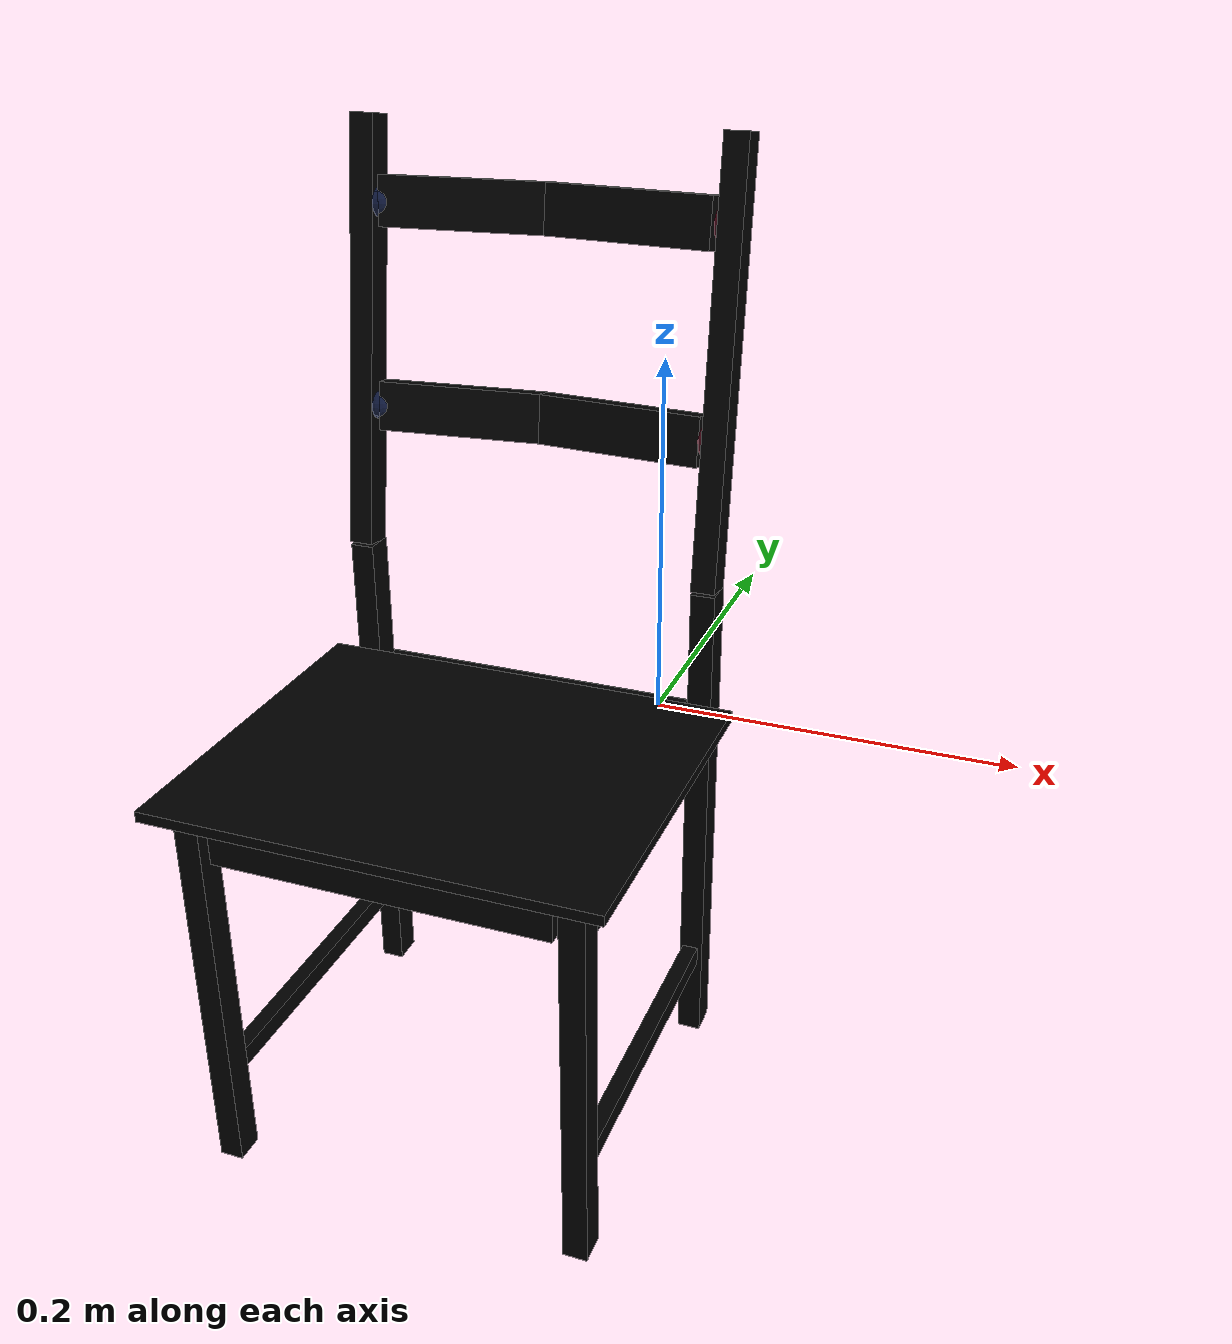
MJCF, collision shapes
<mujoco model="chair_ivar_0668">
    <custom>
        <numeric data="0.371978 0.069044 0.007593 0.500517 -0.499483 0.500514 0.499485" name="0_part0_initpos"/>
        <numeric data="0.024402 -0.027272 0.018791 1.2e-05 -0.999999 0.001077 -0.0" name="4_part4_initpos"/>
        <numeric data="0.017933 0.225411 0.014621 0.999111 0.002904 -0.000122 -0.042059" name="3_part3_initpos"/>
        <numeric data="0.021304 0.340442 0.015788 0.997245 0.069882 0.001738 0.024808" name="2_part2_initpos"/>
        <numeric data="-0.327291 0.05709 0.007492 0.500002 -0.499999 -0.499999 -0.500001" name="1_part1_initpos"/>
    </custom>
    <asset>
        <mesh file="chair_ivar_0668/0.stl" name="part0" scale="0.00050688 0.00050688 0.00050688"/>
        <mesh file="chair_ivar_0668/4.stl" name="part4" scale="0.00050688 0.00050688 0.00050688"/>
        <mesh file="chair_ivar_0668/3.stl" name="part3" scale="0.00050688 0.00050688 0.00050688"/>
        <mesh file="chair_ivar_0668/2.stl" name="part2" scale="0.00050688 0.00050688 0.00050688"/>
        <mesh file="chair_ivar_0668/1.stl" name="part1" scale="0.00050688 0.00050688 0.00050688"/>
    </asset>
    <equality>
        <weld active="false" body1="0_part0" body2="3_part3" solimp="1 1 0.5" solref="0.01 0.3"/>
        <weld active="false" body1="0_part0" body2="2_part2" solimp="1 1 0.5" solref="0.01 0.3"/>
        <weld active="false" body1="4_part4" body2="1_part1" solimp="1 1 0.5" solref="0.01 0.3"/>
        <weld active="false" body1="3_part3" body2="1_part1" solimp="1 1 0.5" solref="0.01 0.3"/>
        <weld active="false" body1="2_part2" body2="1_part1" solimp="1 1 0.5" solref="0.01 0.3"/>
        <weld active="false" body1="0_part0" body2="4_part4" solimp="1 1 0.5" solref="0.01 0.3"/>
    </equality>
    <worldbody>
        <body name="0_part0" pos="-0.0 0.0 0.0" quat="1 0 0 0">
            <geom conaffinity="0" contype="0" density="0" mesh="part0" name="0_part0_mesh" pos="0.0 0.0 0.0"
                  rgba="0.82 0.71 0.55 1" type="mesh"/>
            <site name="0_part0_horizontal_radius_site" pos="-0.0 0.0 0.0" quat="1 0 0 0" rgba="0 0 0 0" size="0.0088"/>
            <site name="0_part0_top_site" pos="0.0 0.0 0.296793925300224" quat="1 0 0 0" rgba="0 0 0 0" size="0.0088"/>
            <site name="0_part0_bottom_site" pos="0.0 0.0 -0.296793925300224" quat="1 0 0 0" rgba="0 0 0 0"
                  size="0.0088"/>
            <site name="0_part0_corner_site8" pos="-0.009656063999999999 0.137994305619456 0.296793925300224"
                  quat="1 0 0 0" rgba="0 0 0 0" size="0.010137599999999998"/>
            <site name="0_part0_corner_site7" pos="0.009656063999999999 0.137994305619456 0.296793925300224"
                  quat="1 0 0 0" rgba="0 0 0 0" size="0.010137599999999998"/>
            <site name="0_part0_corner_site6" pos="0.009656063999999999 -0.137994305619456 0.296793925300224"
                  quat="1 0 0 0" rgba="0 0 0 0" size="0.010137599999999998"/>
            <site name="0_part0_corner_site5" pos="-0.009656063999999999 -0.137994305619456 0.296793925300224"
                  quat="1 0 0 0" rgba="0 0 0 0" size="0.010137599999999998"/>
            <site name="0_part0_corner_site4" pos="-0.009656063999999999 0.137994305619456 -0.296793925300224"
                  quat="1 0 0 0" rgba="0 0 0 0" size="0.010137599999999998"/>
            <site name="0_part0_corner_site3" pos="0.009656063999999999 0.137994305619456 -0.296793925300224"
                  quat="1 0 0 0" rgba="0 0 0 0" size="0.010137599999999998"/>
            <site name="0_part0_corner_site2" pos="0.009656063999999999 -0.137994305619456 -0.296793925300224"
                  quat="1 0 0 0" rgba="0 0 0 0" size="0.010137599999999998"/>
            <site name="0_part0_corner_site1" pos="-0.009656063999999999 -0.137994305619456 -0.296793925300224"
                  quat="1 0 0 0" rgba="0 0 0 0" size="0.010137599999999998"/>
            <geom density="50" name="noviz_collision_0_part0_0" pos="0.0 0.10897919999999998 0.164736"
                  quat="0.9973708 -0.07246746 0 0" rgba="0 0 0 0"
                  size="0.007603199999999998 0.009630719999999997 0.1317888" solref="0.001 1" type="box"/>
            <geom density="50" name="noviz_collision_0_part0_1" pos="0.0 0.09073152 -0.13128192" quat="1 0 0 0"
                  rgba="0 0 0 0" size="0.007603199999999998 0.009630719999999997 0.164736" solref="0.001 1" type="box"/>
            <geom density="50" name="noviz_collision_0_part0_2" pos="0.0 -0.12824064 -0.17183231999999998"
                  quat="1 0 0 0" rgba="0 0 0 0" size="0.007603199999999998 0.0088704 0.12418559999999997"
                  solref="0.001 1" type="box"/>
            <geom density="50" name="noviz_collision_0_part0_3" pos="0.0 -0.01976832 -0.06234624" quat="1 0 0 0"
                  rgba="0 0 0 0" size="0.006335999999999999 0.09884159999999999 0.0139392" solref="0.001 1" type="box"/>
            <geom density="50" name="noviz_collision_0_part0_4" pos="0.0 -0.01976832 -0.23215104" quat="1 0 0 0"
                  rgba="0 0 0 0" size="0.005068799999999999 0.09884159999999999 0.006335999999999999" solref="0.001 1"
                  type="box"/>
            <site name="lleg-back,0,conn_site2" pos="-0.009732095999999999 0.12722688 0.2445696" quat="1 0 0 0"
                  rgba="0.9019 0.0980 0.2941 0.3" size="0.0088"/>
            <site name="lleg-back,0,conn_site1" pos="-0.009123839999999998 0.10502553599999999 0.12352665599999997"
                  quat="1 0 0 0" rgba="0.9019 0.0980 0.2941 0.3" size="0.0088"/>
            <site name="lleg-seat,0,conn_site1" pos="-0.009630719999999997 0.08921087999999998 -0.05981183999999999"
                  quat="1 0 0 0" rgba="0.2352 0.7058 0.2941 0.3" size="0.0088"/>
        </body>
        <body name="4_part4" pos="-0.115872764806656 -0.026949470625791998 -0.05861101639219199" quat="1 0 0 0">
            <geom conaffinity="0" contype="0" density="0" mesh="part4" name="4_part4_mesh" pos="0.0 0.0 0.0"
                  rgba="0.82 0.71 0.55 1" type="mesh"/>
            <site name="4_part4_horizontal_radius_site" pos="0.0 0.0 0.0" quat="1 0 0 0" rgba="0 0 0 0" size="0.0088"/>
            <site name="4_part4_top_site" pos="0.0 0.0 0.019312131091968" quat="1 0 0 0" rgba="0 0 0 0" size="0.0088"/>
            <site name="4_part4_bottom_site" pos="0.0 0.0 -0.019312131091968" quat="1 0 0 0" rgba="0 0 0 0"
                  size="0.0088"/>
            <site name="4_part4_corner_site8" pos="-0.13840358699059196 0.123919537522176 0.019312131091968"
                  quat="1 0 0 0" rgba="0 0 0 0" size="0.010137599999999998"/>
            <site name="4_part4_corner_site7" pos="0.13840358699059196 0.123919537522176 0.019312131091968"
                  quat="1 0 0 0" rgba="0 0 0 0" size="0.010137599999999998"/>
            <site name="4_part4_corner_site6" pos="0.13840358699059196 -0.123919537522176 0.019312131091968"
                  quat="1 0 0 0" rgba="0 0 0 0" size="0.010137599999999998"/>
            <site name="4_part4_corner_site5" pos="-0.13840358699059196 -0.123919537522176 0.019312131091968"
                  quat="1 0 0 0" rgba="0 0 0 0" size="0.010137599999999998"/>
            <site name="4_part4_corner_site4" pos="-0.13840358699059196 0.123919537522176 -0.019312131091968"
                  quat="1 0 0 0" rgba="0 0 0 0" size="0.010137599999999998"/>
            <site name="4_part4_corner_site3" pos="0.13840358699059196 0.123919537522176 -0.019312131091968"
                  quat="1 0 0 0" rgba="0 0 0 0" size="0.010137599999999998"/>
            <site name="4_part4_corner_site2" pos="0.13840358699059196 -0.123919537522176 -0.019312131091968"
                  quat="1 0 0 0" rgba="0 0 0 0" size="0.010137599999999998"/>
            <site name="4_part4_corner_site1" pos="-0.13840358699059196 -0.123919537522176 -0.019312131091968"
                  quat="1 0 0 0" rgba="0 0 0 0" size="0.010137599999999998"/>
            <geom density="50" name="noviz_collision_4_part4_0" pos="0.0 -0.008025248563199998 0.015526215936"
                  quat="1 0 0 0" rgba="0 0 0 0" size="0.138403584 0.114048 0.00329472" solref="0.001 1" type="box"/>
            <geom density="50" name="noviz_collision_4_part4_1" pos="0.0 -0.100784268288 -0.005255864063999999"
                  quat="1 0 0 0" rgba="0 0 0 0" size="0.10391039999999999 0.006335999999999999 0.011911679999999997"
                  solref="0.001 1" type="box"/>
            <geom density="50" name="noviz_collision_4_part4_2" pos="0.0 0.11768101171199999 -0.003380408064"
                  quat="1 0 0 0" rgba="0 0 0 0" size="0.10391039999999999 0.006335999999999999 0.015206399999999997"
                  solref="0.001 1" type="box"/>
            <geom density="50" name="noviz_collision_4_part4_3" pos="0.0 0.11768101171199999 0.009139527936"
                  quat="1 0 0 0" rgba="0 0 0 0" size="0.10391039999999999 0.005068799999999999 0.00329472"
                  solref="0.001 1" type="box"/>
            <site name="seat-rleg,0,conn_site1" pos="-0.105633792 0.11717544959999998 -0.0022150655999999993"
                  quat="1 0 0 0" rgba="1.0 0.8823 0.0980 0.3" size="0.0088"/>
            <site name="seat-lleg,0,conn_site1" pos="0.10624204799999999 0.11616168959999999 -0.0012013056"
                  quat="1 0 0 0" rgba="0.2352 0.7058 0.2941 0.3" size="0.0088"/>
        </body>
        <body name="3_part3" pos="-0.115872961577472 0.12518058795264 0.244362872590848" quat="1 0 0 0">
            <geom conaffinity="0" contype="0" density="0" mesh="part3" name="3_part3_mesh" pos="0.0 0.0 0.0"
                  rgba="0.82 0.71 0.55 1" type="mesh"/>
            <site name="3_part3_horizontal_radius_site" pos="0.0 -0.0 0.0" quat="1 0 0 0" rgba="0 0 0 0" size="0.0088"/>
            <site name="3_part3_top_site" pos="0.0 0.0 0.016096455581183996" quat="1 0 0 0" rgba="0 0 0 0"
                  size="0.0088"/>
            <site name="3_part3_bottom_site" pos="0.0 0.0 -0.016096455581183996" quat="1 0 0 0" rgba="0 0 0 0"
                  size="0.0088"/>
            <site name="3_part3_corner_site8" pos="-0.11587257771724797 0.011540832754176 0.016096455581183996"
                  quat="1 0 0 0" rgba="0 0 0 0" size="0.010137599999999998"/>
            <site name="3_part3_corner_site7" pos="0.11587257771724797 0.011540832754176 0.016096455581183996"
                  quat="1 0 0 0" rgba="0 0 0 0" size="0.010137599999999998"/>
            <site name="3_part3_corner_site6" pos="0.11587257771724797 -0.011540832754176 0.016096455581183996"
                  quat="1 0 0 0" rgba="0 0 0 0" size="0.010137599999999998"/>
            <site name="3_part3_corner_site5" pos="-0.11587257771724797 -0.011540832754176 0.016096455581183996"
                  quat="1 0 0 0" rgba="0 0 0 0" size="0.010137599999999998"/>
            <site name="3_part3_corner_site4" pos="-0.11587257771724797 0.011540832754176 -0.016096455581183996"
                  quat="1 0 0 0" rgba="0 0 0 0" size="0.010137599999999998"/>
            <site name="3_part3_corner_site3" pos="0.11587257771724797 0.011540832754176 -0.016096455581183996"
                  quat="1 0 0 0" rgba="0 0 0 0" size="0.010137599999999998"/>
            <site name="3_part3_corner_site2" pos="0.11587257771724797 -0.011540832754176 -0.016096455581183996"
                  quat="1 0 0 0" rgba="0 0 0 0" size="0.010137599999999998"/>
            <site name="3_part3_corner_site1" pos="-0.11587257771724797 -0.011540832754176 -0.016096455581183996"
                  quat="1 0 0 0" rgba="0 0 0 0" size="0.010137599999999998"/>
            <geom density="50" name="noviz_collision_3_part3_0"
                  pos="-0.053424949248 1.8769766399999998e-05 0.0014739259391999997"
                  quat="0.9965003 -0.071306 -0.003113293 0.0435083" rgba="0 0 0 0"
                  size="0.05322239999999999 0.006335999999999999 0.015206399999999997" solref="0.001 1" type="box"/>
            <geom density="50" name="noviz_collision_3_part3_1"
                  pos="0.05149921075199999 1.8769766399999998e-05 0.0014739259391999997"
                  quat="0.9965003 -0.07130595 0.003113286 -0.04350817" rgba="0 0 0 0"
                  size="0.05322239999999999 0.006335999999999999 0.015206399999999997" solref="0.001 1" type="box"/>
            <site name="back-lleg,0,conn_site2" pos="0.10614067199999998 0.0020477952 0.0002078208" quat="1 0 0 0"
                  rgba="0.9019 0.0980 0.2941 0.3" size="0.0088"/>
            <site name="back-rleg,0,conn_site1" pos="-0.107255808 -0.005403340799999999 0.0006133247999999999"
                  quat="1 0 0 0" rgba="0.2627 0.3882 0.8470 0.3" size="0.0088"/>
        </body>
        <body name="2_part2" pos="-0.115872961577472 0.10729661295513598 0.12332352378931201" quat="1 0 0 0">
            <geom conaffinity="0" contype="0" density="0" mesh="part2" name="2_part2_mesh" pos="0.0 0.0 0.0"
                  rgba="0.82 0.71 0.55 1" type="mesh"/>
            <site name="2_part2_horizontal_radius_site" pos="0.0 -0.0 0.0" quat="1 0 0 0" rgba="0 0 0 0" size="0.0088"/>
            <site name="2_part2_top_site" pos="0.0 0.0 0.016096455581183996" quat="1 0 0 0" rgba="0 0 0 0"
                  size="0.0088"/>
            <site name="2_part2_bottom_site" pos="0.0 0.0 -0.016096455581183996" quat="1 0 0 0" rgba="0 0 0 0"
                  size="0.0088"/>
            <site name="2_part2_corner_site8" pos="-0.11587257771724797 0.011540832754176 0.016096455581183996"
                  quat="1 0 0 0" rgba="0 0 0 0" size="0.010137599999999998"/>
            <site name="2_part2_corner_site7" pos="0.11587257771724797 0.011540832754176 0.016096455581183996"
                  quat="1 0 0 0" rgba="0 0 0 0" size="0.010137599999999998"/>
            <site name="2_part2_corner_site6" pos="0.11587257771724797 -0.011540832754176 0.016096455581183996"
                  quat="1 0 0 0" rgba="0 0 0 0" size="0.010137599999999998"/>
            <site name="2_part2_corner_site5" pos="-0.11587257771724797 -0.011540832754176 0.016096455581183996"
                  quat="1 0 0 0" rgba="0 0 0 0" size="0.010137599999999998"/>
            <site name="2_part2_corner_site4" pos="-0.11587257771724797 0.011540832754176 -0.016096455581183996"
                  quat="1 0 0 0" rgba="0 0 0 0" size="0.010137599999999998"/>
            <site name="2_part2_corner_site3" pos="0.11587257771724797 0.011540832754176 -0.016096455581183996"
                  quat="1 0 0 0" rgba="0 0 0 0" size="0.010137599999999998"/>
            <site name="2_part2_corner_site2" pos="0.11587257771724797 -0.011540832754176 -0.016096455581183996"
                  quat="1 0 0 0" rgba="0 0 0 0" size="0.010137599999999998"/>
            <site name="2_part2_corner_site1" pos="-0.11587257771724797 -0.011540832754176 -0.016096455581183996"
                  quat="1 0 0 0" rgba="0 0 0 0" size="0.010137599999999998"/>
            <geom density="50" name="noviz_collision_2_part2_0"
                  pos="-0.051904309248 0.00016194815999999996 1.1475763199999998e-05"
                  quat="0.9965003 -0.071306 -0.003113293 0.0435083" rgba="0 0 0 0"
                  size="0.05322239999999999 0.006335999999999999 0.015206399999999997" solref="0.001 1" type="box"/>
            <geom density="50" name="noviz_collision_2_part2_1"
                  pos="0.053019850752 0.00016194815999999996 1.1475763199999998e-05"
                  quat="0.9965003 -0.07130595 0.003113286 -0.04350817" rgba="0 0 0 0"
                  size="0.05322239999999999 0.006335999999999999 0.015206399999999997" solref="0.001 1" type="box"/>
            <site name="back-lleg,0,conn_site1" pos="0.10674892799999999 -0.0022708223999999997 0.000202752"
                  quat="1 0 0 0" rgba="0.9019 0.0980 0.2941 0.3" size="0.0088"/>
            <site name="back-rleg,0,conn_site2" pos="-0.10588723199999998 -0.004855910399999999 -0.00030412799999999997"
                  quat="1 0 0 0" rgba="0.2627 0.3882 0.8470 0.3" size="0.0088"/>
        </body>
        <body name="1_part1" pos="-0.231745536 0.0 0.0" quat="1 0 0 0">
            <geom conaffinity="0" contype="0" density="0" mesh="part1" name="1_part1_mesh" pos="0.0 0.0 0.0"
                  rgba="0.82 0.71 0.55 1" type="mesh"/>
            <site name="1_part1_horizontal_radius_site" pos="0.0 0.0 0.0" quat="1 0 0 0" rgba="0 0 0 0" size="0.0088"/>
            <site name="1_part1_top_site" pos="0.0 0.0 0.296793925300224" quat="1 0 0 0" rgba="0 0 0 0" size="0.0088"/>
            <site name="1_part1_bottom_site" pos="0.0 0.0 -0.296793925300224" quat="1 0 0 0" rgba="0 0 0 0"
                  size="0.0088"/>
            <site name="1_part1_corner_site8" pos="-0.009656063999999999 0.137994305619456 0.296793925300224"
                  quat="1 0 0 0" rgba="0 0 0 0" size="0.010137599999999998"/>
            <site name="1_part1_corner_site7" pos="0.009656063999999999 0.137994305619456 0.296793925300224"
                  quat="1 0 0 0" rgba="0 0 0 0" size="0.010137599999999998"/>
            <site name="1_part1_corner_site6" pos="0.009656063999999999 -0.137994305619456 0.296793925300224"
                  quat="1 0 0 0" rgba="0 0 0 0" size="0.010137599999999998"/>
            <site name="1_part1_corner_site5" pos="-0.009656063999999999 -0.137994305619456 0.296793925300224"
                  quat="1 0 0 0" rgba="0 0 0 0" size="0.010137599999999998"/>
            <site name="1_part1_corner_site4" pos="-0.009656063999999999 0.137994305619456 -0.296793925300224"
                  quat="1 0 0 0" rgba="0 0 0 0" size="0.010137599999999998"/>
            <site name="1_part1_corner_site3" pos="0.009656063999999999 0.137994305619456 -0.296793925300224"
                  quat="1 0 0 0" rgba="0 0 0 0" size="0.010137599999999998"/>
            <site name="1_part1_corner_site2" pos="0.009656063999999999 -0.137994305619456 -0.296793925300224"
                  quat="1 0 0 0" rgba="0 0 0 0" size="0.010137599999999998"/>
            <site name="1_part1_corner_site1" pos="-0.009656063999999999 -0.137994305619456 -0.296793925300224"
                  quat="1 0 0 0" rgba="0 0 0 0" size="0.010137599999999998"/>
            <geom density="50" name="noviz_collision_1_part1_0" pos="0.0001013810688 0.10897919999999998 0.164736"
                  quat="0.9973708 -0.07246746 0 0" rgba="0 0 0 0"
                  size="0.007603199999999998 0.009630719999999997 0.1317888" solref="0.001 1" type="box"/>
            <geom density="50" name="noviz_collision_1_part1_1" pos="0.0001013810688 0.09073152 -0.13128192"
                  quat="1 0 0 0" rgba="0 0 0 0" size="0.007603199999999998 0.009630719999999997 0.164736"
                  solref="0.001 1" type="box"/>
            <geom density="50" name="noviz_collision_1_part1_2" pos="0.0001013810688 -0.12824064 -0.17183231999999998"
                  quat="1 0 0 0" rgba="0 0 0 0" size="0.007603199999999998 0.0088704 0.12418559999999997"
                  solref="0.001 1" type="box"/>
            <geom density="50" name="noviz_collision_1_part1_3" pos="0.0001013810688 -0.01976832 -0.06234624"
                  quat="1 0 0 0" rgba="0 0 0 0" size="0.006335999999999999 0.09884159999999999 0.0139392"
                  solref="0.001 1" type="box"/>
            <geom density="50" name="noviz_collision_1_part1_4" pos="0.0001013810688 -0.01976832 -0.23215104"
                  quat="1 0 0 0" rgba="0 0 0 0" size="0.005068799999999999 0.09884159999999999 0.006335999999999999"
                  solref="0.001 1" type="box"/>
            <site name="rleg-back,0,conn_site2" pos="0.009985535999999998 0.10244044799999999 0.12301977599999998"
                  quat="1 0 0 0" rgba="0.2627 0.3882 0.8470 0.3" size="0.0088"/>
            <site name="rleg-back,0,conn_site1" pos="0.008616959999999998 0.11977574399999998 0.244975104"
                  quat="1 0 0 0" rgba="0.2627 0.3882 0.8470 0.3" size="0.0088"/>
            <site name="rleg-seat,0,conn_site1" pos="0.010238975999999997 0.09022463999999998 -0.06082559999999999"
                  quat="1 0 0 0" rgba="1.0 0.8823 0.0980 0.3" size="0.0088"/>
        </body>
    </worldbody>
    <actuator/>
    <sensor/>
    <contact/>
    <default/>
</mujoco>
